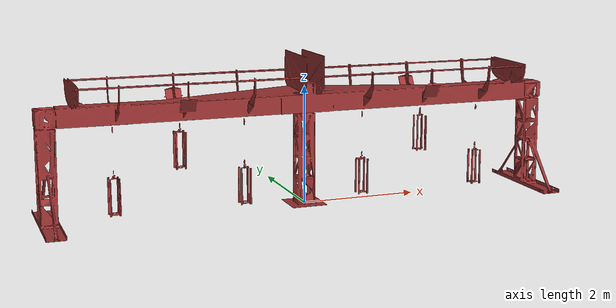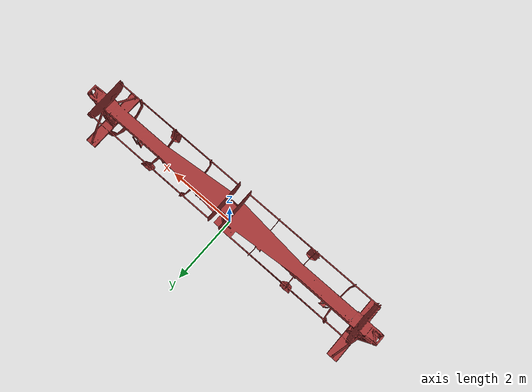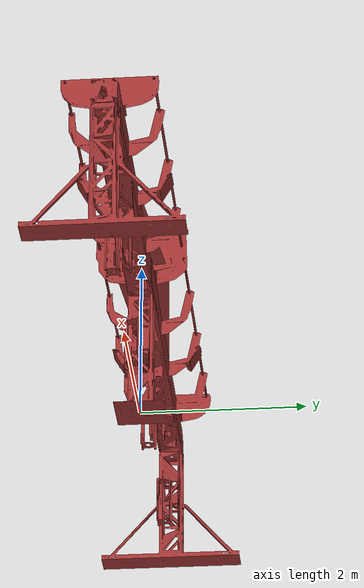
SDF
<?xml version="1.0"?>
<sdf version="1.8">
  <model name="reefscape_barge">
    <static>true</static>

    <link name="link">
      <visual name="visual">
        <geometry>
          <mesh>
            <uri>meshes/barge.stl</uri>
            <scale>1 1 1</scale>
          </mesh>
        </geometry>
        <material>
          <ambient>0.31 0.10 0.10 1</ambient>
          <diffuse>0.62 0.20 0.20 1</diffuse>
        </material>
      </visual>

      <collision name="collision">
        <geometry>
          <mesh>
            <uri>meshes/barge.stl</uri>
            <scale>1 1 1</scale>
          </mesh>
        </geometry>
      </collision>
    </link>
  </model>
</sdf>
